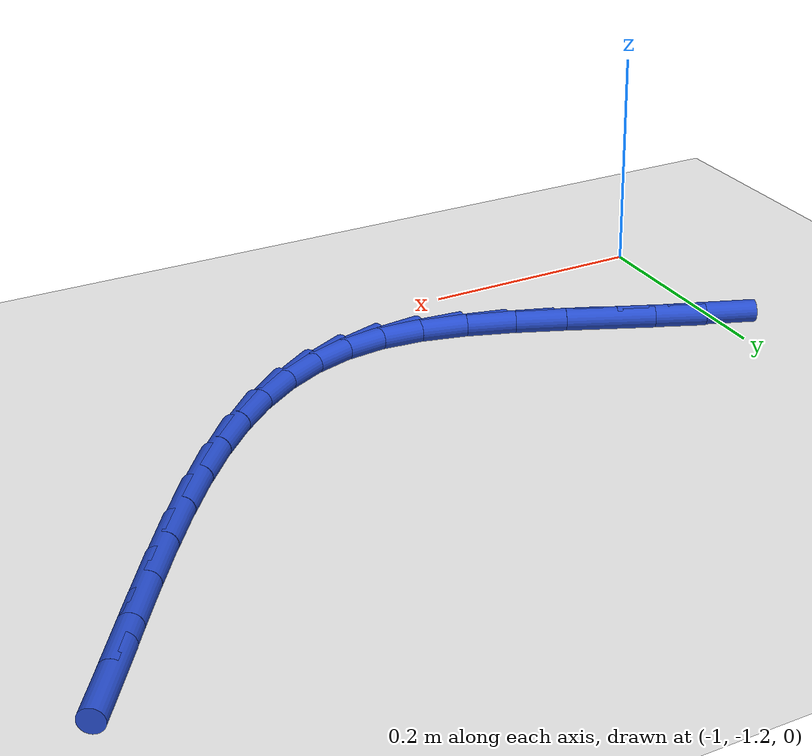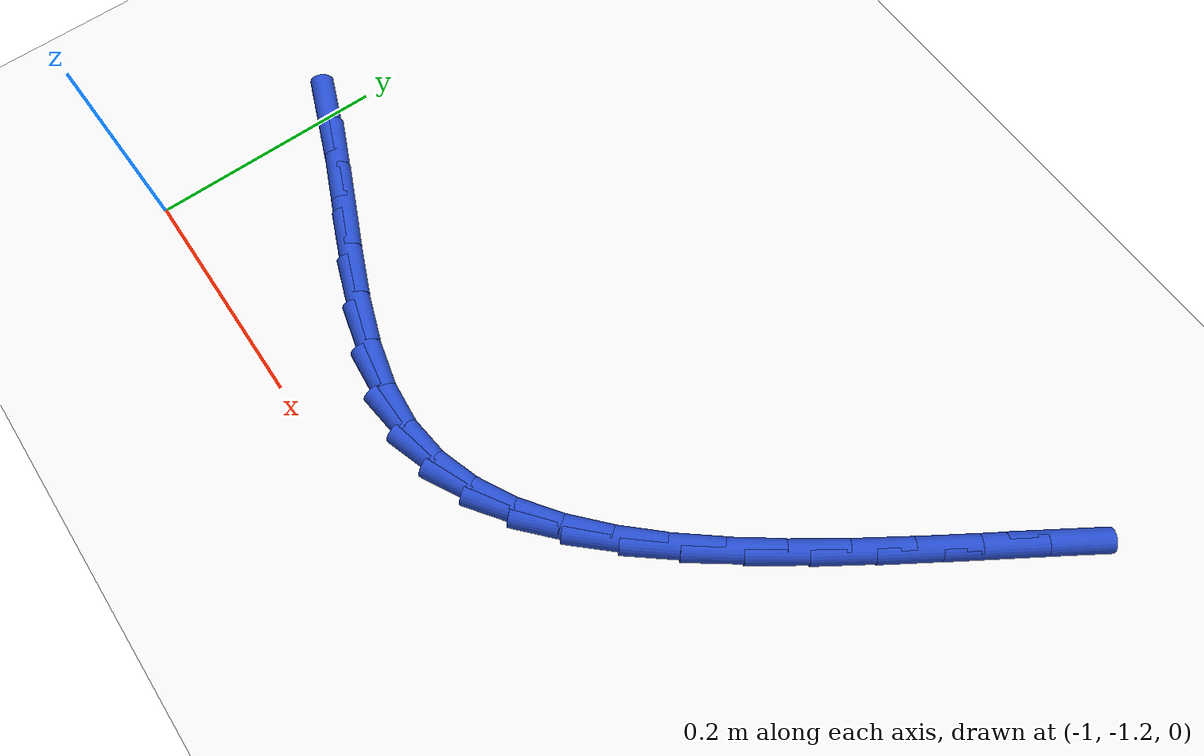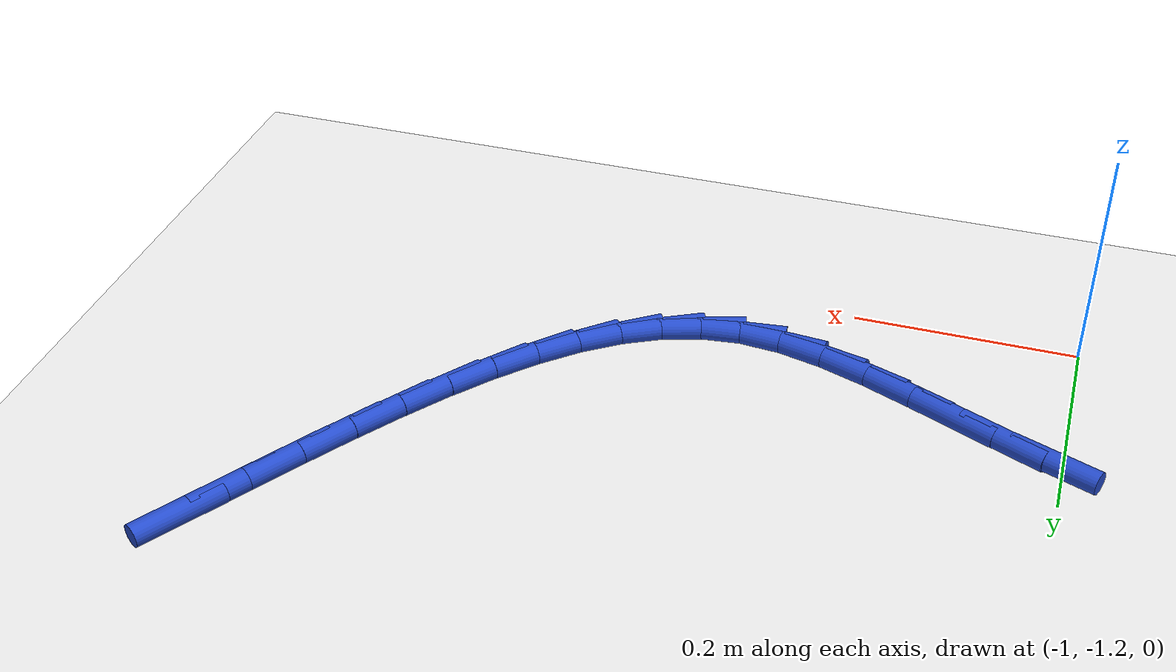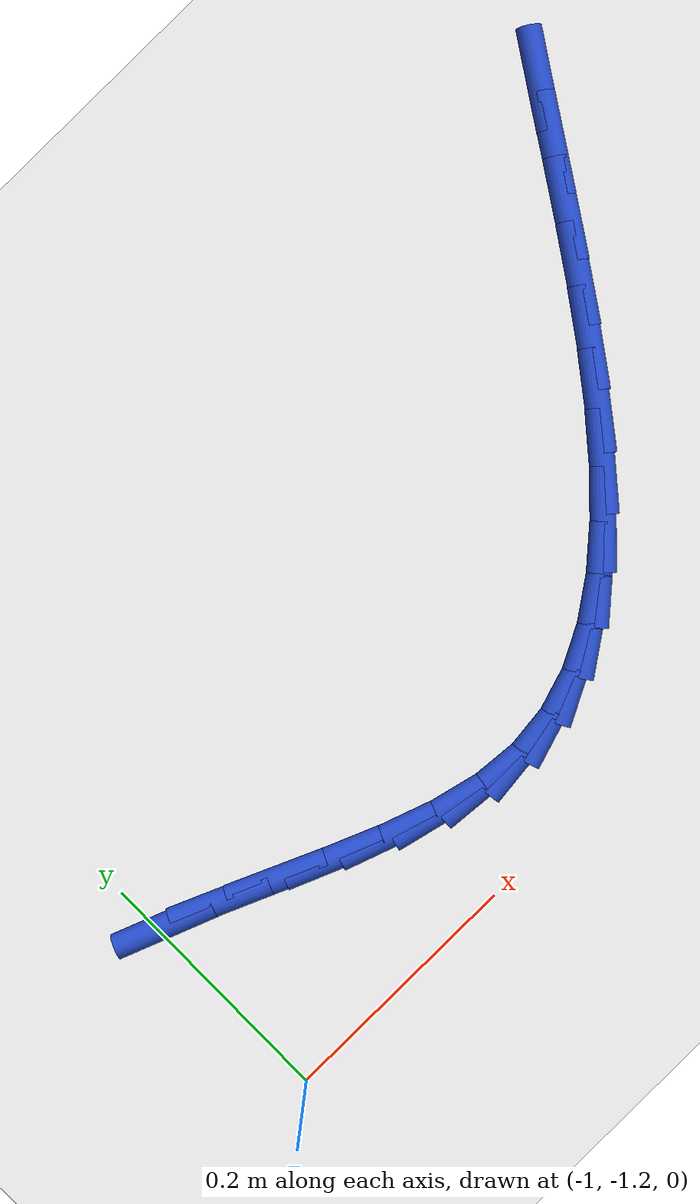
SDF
<sdf version="1.6">
 <world name="default">
  <model name="ground_plane">
   <static>1</static>
   <link name="link">
    <collision name="collision">
     <geometry><plane><normal>0 0 1</normal><size>100 100</size></plane></geometry>
     <surface><friction><ode><mu>100</mu><mu2>50</mu2></ode></friction></surface>
    </collision>
    <visual name="visual">
     <cast_shadows>0</cast_shadows>
     <geometry><plane><normal>0 0 1</normal><size>100 100</size></plane></geometry>
     <material>
      <script><uri>file://media/materials/scripts/gazebo.material</uri><name>Gazebo/WhiteGlow</name></script>
     </material>
    </visual>
   </link>
  </model>
  <model name="line">
   <link name="link_121">
    <pose>-0.9925253107666455 -1.0401473778715538 0.01 0 1.57 -0.3682329871930759</pose>
    <collision name="collision">
     <geometry><cylinder><radius>0.01</radius><length>0.08</length></cylinder></geometry>
    </collision>
    <visual name="visual">
     <material>
      <script><name>Gazebo/Blue</name><uri>file://media/materials/scripts/gazebo.material</uri></script>
     </material>
     <geometry><cylinder><radius>0.01</radius><length>0.08</length></cylinder></geometry>
    </visual>
   </link>
   <link name="link_122">
    <pose>-0.9495702905781064 -1.0567207869113278 0.01 0 1.57 -0.40583047665596983</pose>
    <collision name="collision">
     <geometry><cylinder><radius>0.01</radius><length>0.08</length></cylinder></geometry>
    </collision>
    <visual name="visual">
     <material>
      <script><name>Gazebo/Blue</name><uri>file://media/materials/scripts/gazebo.material</uri></script>
     </material>
     <geometry><cylinder><radius>0.01</radius><length>0.08</length></cylinder></geometry>
    </visual>
   </link>
   <link name="link_123">
    <pose>-0.9071846511409991 -1.0749331747297048 0.01 0 1.57 -0.413911701521141</pose>
    <collision name="collision">
     <geometry><cylinder><radius>0.01</radius><length>0.08</length></cylinder></geometry>
    </collision>
    <visual name="visual">
     <material>
      <script><name>Gazebo/Blue</name><uri>file://media/materials/scripts/gazebo.material</uri></script>
     </material>
     <geometry><cylinder><radius>0.01</radius><length>0.08</length></cylinder></geometry>
    </visual>
   </link>
   <link name="link_124">
    <pose>-0.8655185858807105 -1.0932366516769887 0.01 0 1.57 -0.39161684274257114</pose>
    <collision name="collision">
     <geometry><cylinder><radius>0.01</radius><length>0.08</length></cylinder></geometry>
    </collision>
    <visual name="visual">
     <material>
      <script><name>Gazebo/Blue</name><uri>file://media/materials/scripts/gazebo.material</uri></script>
     </material>
     <geometry><cylinder><radius>0.01</radius><length>0.08</length></cylinder></geometry>
    </visual>
   </link>
   <link name="link_125">
    <pose>-0.8247222882226282 -1.1100833281034839 0.01 0 1.57 -0.33488796066673415</pose>
    <collision name="collision">
     <geometry><cylinder><radius>0.01</radius><length>0.08</length></cylinder></geometry>
    </collision>
    <visual name="visual">
     <material>
      <script><name>Gazebo/Blue</name><uri>file://media/materials/scripts/gazebo.material</uri></script>
     </material>
     <geometry><cylinder><radius>0.01</radius><length>0.08</length></cylinder></geometry>
    </visual>
   </link>
   <link name="link_126">
    <pose>-0.7849459515921382 -1.1239253143594952 0.01 0 1.57 -0.23613080992921442</pose>
    <collision name="collision">
     <geometry><cylinder><radius>0.01</radius><length>0.08</length></cylinder></geometry>
    </collision>
    <visual name="visual">
     <material>
      <script><name>Gazebo/Blue</name><uri>file://media/materials/scripts/gazebo.material</uri></script>
     </material>
     <geometry><cylinder><radius>0.01</radius><length>0.08</length></cylinder></geometry>
    </visual>
   </link>
   <link name="link_127">
    <pose>-0.7463397694146284 -1.1332147207953251 0.01 0 1.57 -0.08531930817903706</pose>
    <collision name="collision">
     <geometry><cylinder><radius>0.01</radius><length>0.08</length></cylinder></geometry>
    </collision>
    <visual name="visual">
     <material>
      <script><name>Gazebo/Blue</name><uri>file://media/materials/scripts/gazebo.material</uri></script>
     </material>
     <geometry><cylinder><radius>0.01</radius><length>0.08</length></cylinder></geometry>
    </visual>
   </link>
   <link name="link_128">
    <pose>-0.7090539343801511 -1.1364036640509416 0.01 0 1.57 0.1126541702877252</pose>
    <collision name="collision">
     <geometry><cylinder><radius>0.01</radius><length>0.08</length></cylinder></geometry>
    </collision>
    <visual name="visual">
     <material>
      <script><name>Gazebo/Blue</name><uri>file://media/materials/scripts/gazebo.material</uri></script>
     </material>
     <geometry><cylinder><radius>0.01</radius><length>0.08</length></cylinder></geometry>
    </visual>
   </link>
   <link name="link_129">
    <pose>-0.6731916189396913 -1.1323464467914135 0.01 0 1.57 0.3075000933779422</pose>
    <collision name="collision">
     <geometry><cylinder><radius>0.01</radius><length>0.08</length></cylinder></geometry>
    </collision>
    <visual name="visual">
     <material>
      <script><name>Gazebo/Blue</name><uri>file://media/materials/scripts/gazebo.material</uri></script>
     </material>
     <geometry><cylinder><radius>0.01</radius><length>0.08</length></cylinder></geometry>
    </visual>
   </link>
   <link name="link_130">
    <pose>-0.6386818334915259 -1.1213870609112255 0.01 0 1.57 0.47651161310408313</pose>
    <collision name="collision">
     <geometry><cylinder><radius>0.01</radius><length>0.08</length></cylinder></geometry>
    </collision>
    <visual name="visual">
     <material>
      <script><name>Gazebo/Blue</name><uri>file://media/materials/scripts/gazebo.material</uri></script>
     </material>
     <geometry><cylinder><radius>0.01</radius><length>0.08</length></cylinder></geometry>
    </visual>
   </link>
   <link name="link_131">
    <pose>-0.6054132736601902 -1.1042143293590143 0.01 0 1.57 0.614894604620248</pose>
    <collision name="collision">
     <geometry><cylinder><radius>0.01</radius><length>0.08</length></cylinder></geometry>
    </collision>
    <visual name="visual">
     <material>
      <script><name>Gazebo/Blue</name><uri>file://media/materials/scripts/gazebo.material</uri></script>
     </material>
     <geometry><cylinder><radius>0.01</radius><length>0.08</length></cylinder></geometry>
    </visual>
   </link>
   <link name="link_132">
    <pose>-0.573274635070221 -1.0815170750834178 0.01 0 1.57 0.7243167693908696</pose>
    <collision name="collision">
     <geometry><cylinder><radius>0.01</radius><length>0.08</length></cylinder></geometry>
    </collision>
    <visual name="visual">
     <material>
      <script><name>Gazebo/Blue</name><uri>file://media/materials/scripts/gazebo.material</uri></script>
     </material>
     <geometry><cylinder><radius>0.01</radius><length>0.08</length></cylinder></geometry>
    </visual>
   </link>
   <link name="link_133">
    <pose>-0.5421546133461538 -1.0539841210330732 0.01 0 1.57 0.8090980623366194</pose>
    <collision name="collision">
     <geometry><cylinder><radius>0.01</radius><length>0.08</length></cylinder></geometry>
    </collision>
    <visual name="visual">
     <material>
      <script><name>Gazebo/Blue</name><uri>file://media/materials/scripts/gazebo.material</uri></script>
     </material>
     <geometry><cylinder><radius>0.01</radius><length>0.08</length></cylinder></geometry>
    </visual>
   </link>
   <link name="link_134">
    <pose>-0.5119419041125236 -1.0223042901566164 0.01 0 1.57 0.8737927333084706</pose>
    <collision name="collision">
     <geometry><cylinder><radius>0.01</radius><length>0.08</length></cylinder></geometry>
    </collision>
    <visual name="visual">
     <material>
      <script><name>Gazebo/Blue</name><uri>file://media/materials/scripts/gazebo.material</uri></script>
     </material>
     <geometry><cylinder><radius>0.01</radius><length>0.08</length></cylinder></geometry>
    </visual>
   </link>
   <link name="link_135">
    <pose>-0.4825252029938669 -0.9871664054026856 0.01 0 1.57 0.9222215929394919</pose>
    <collision name="collision">
     <geometry><cylinder><radius>0.01</radius><length>0.08</length></cylinder></geometry>
    </collision>
    <visual name="visual">
     <material>
      <script><name>Gazebo/Blue</name><uri>file://media/materials/scripts/gazebo.material</uri></script>
     </material>
     <geometry><cylinder><radius>0.01</radius><length>0.08</length></cylinder></geometry>
    </visual>
   </link>
   <link name="link_136">
    <pose>-0.4537932056147187 -0.9492592897199175 0.01 0 1.57 0.9572674294287096</pose>
    <collision name="collision">
     <geometry><cylinder><radius>0.01</radius><length>0.08</length></cylinder></geometry>
    </collision>
    <visual name="visual">
     <material>
      <script><name>Gazebo/Blue</name><uri>file://media/materials/scripts/gazebo.material</uri></script>
     </material>
     <geometry><cylinder><radius>0.01</radius><length>0.08</length></cylinder></geometry>
    </visual>
   </link>
   <link name="link_137">
    <pose>-0.4256346075996157 -0.9092717660569499 0.01 0 1.57 0.9809484010083271</pose>
    <collision name="collision">
     <geometry><cylinder><radius>0.01</radius><length>0.08</length></cylinder></geometry>
    </collision>
    <visual name="visual">
     <material>
      <script><name>Gazebo/Blue</name><uri>file://media/materials/scripts/gazebo.material</uri></script>
     </material>
     <geometry><cylinder><radius>0.01</radius><length>0.08</length></cylinder></geometry>
    </visual>
   </link>
   <link name="link_138">
    <pose>-0.3979381045730931 -0.8678926573624195 0.01 0 1.57 0.994546465711699</pose>
    <collision name="collision">
     <geometry><cylinder><radius>0.01</radius><length>0.08</length></cylinder></geometry>
    </collision>
    <visual name="visual">
     <material>
      <script><name>Gazebo/Blue</name><uri>file://media/materials/scripts/gazebo.material</uri></script>
     </material>
     <geometry><cylinder><radius>0.01</radius><length>0.08</length></cylinder></geometry>
    </visual>
   </link>
   <link name="link_139">
    <pose>-0.3705923921596869 -0.8258107865849639 0.01 0 1.57 0.9987089620378661</pose>
    <collision name="collision">
     <geometry><cylinder><radius>0.01</radius><length>0.08</length></cylinder></geometry>
    </collision>
    <visual name="visual">
     <material>
      <script><name>Gazebo/Blue</name><uri>file://media/materials/scripts/gazebo.material</uri></script>
     </material>
     <geometry><cylinder><radius>0.01</radius><length>0.08</length></cylinder></geometry>
    </visual>
   </link>
   <link name="link_140">
    <pose>-0.34348616598393245 -0.7837149766732194 0.01 0 1.57 0.9934976763572283</pose>
    <collision name="collision">
     <geometry><cylinder><radius>0.01</radius><length>0.08</length></cylinder></geometry>
    </collision>
    <visual name="visual">
     <material>
      <script><name>Gazebo/Blue</name><uri>file://media/materials/scripts/gazebo.material</uri></script>
     </material>
     <geometry><cylinder><radius>0.01</radius><length>0.08</length></cylinder></geometry>
    </visual>
   </link>
  </model>
 </world>
</sdf>
